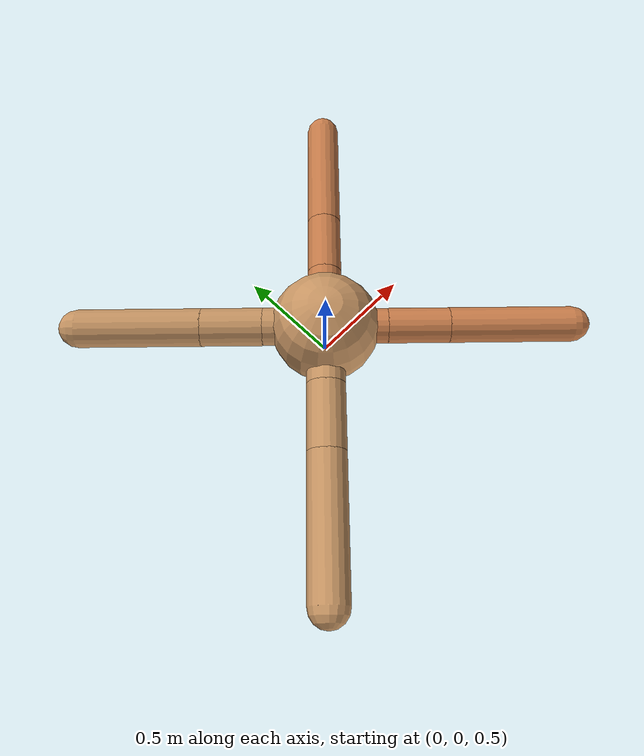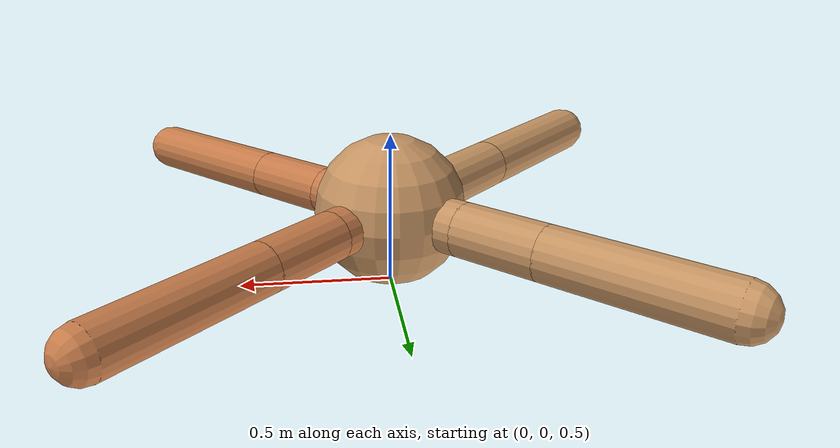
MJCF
<?xml version="1.0" ?>
<mujoco model="ant">

	<compiler angle="degree" coordinate="local" inertiafromgeom="true"/>

	<option integrator="RK4" timestep="0.01"/>

	<custom>

		<numeric data="0.0 0.0 0.55 1.0 0.0 0.0 0.0 0.0 1.0 0.0 -1.0 0.0 -1.0 0.0 1.0" name="init_qpos"/>

	</custom>

	<default>

		<joint armature="1" damping="1" limited="true"/>

		<geom conaffinity="0" condim="3" density="5.0" friction="1.5 0.1 0.1" margin="0.01" rgba="0.8 0.6 0.4 1"/>

	</default>

	<worldbody>

		<body name="torso" pos="0 0 0.75">

			<geom name="torso_geom" pos="0 0 0" size="0.24682460772825113" type="sphere"/>

			<!--joint armature="0" damping="0" limited="false" margin="0.01" name="root" pos="0 0 0" type="free"/-->

			<body name="front_left_leg" pos="0 0 0">

				<geom fromto="0 0 0 0.2 0.2 0" name="aux_1_geom" size="0.07830310734931238" type="capsule" rgba=".8 .5 .3 1"/>

				<body name="aux_1" pos="0.2 0.2 0">

					<joint axis="0 0 1" name="hip_1" pos="0.0 0.0 0.0" range="-40 40" type="hinge"/>

					<geom fromto="0 0 0 0.19841915895980783 0.19841915895980783 0" name="left_leg_geom" size="0.07830310734931238" type="capsule" rgba=".8 .5 .3 1"/>

					<body pos="0.19841915895980783 0.19841915895980783 0" name="front_left_foot">

						<joint axis="-1 1 0" name="ankle_1" pos="0.0 0.0 0.0" range="30 100" type="hinge"/>

						<geom fromto="0 0 0 0.39683831791961566 0.39683831791961566 0" name="left_ankle_geom" size="0.07830310734931238" type="capsule" rgba=".8 .5 .3 1"/>

					</body>

				</body>

			</body>

			<body name="front_right_leg" pos="0 0 0">

				<geom fromto="0 0 0 -0.2 0.2 0" name="aux_2_geom" size="0.08641005153806383" type="capsule"/>

				<body name="aux_2" pos="-0.2 0.2 0">

					<joint axis="0 0 1" name="hip_2" pos="0.0 0.0 0.0" range="-40 40" type="hinge"/>

					<geom fromto="0 0 0 -0.19709464413269528 0.19709464413269528 0" name="right_leg_geom" size="0.08641005153806383" type="capsule"/>

					<body pos="-0.19709464413269528 0.19709464413269528 0" name="front_right_foot">

						<joint axis="1 1 0" name="ankle_2" pos="0.0 0.0 0.0" range="-100 -30" type="hinge"/>

						<geom fromto="0 0 0 -0.39418928826539057 0.39418928826539057 0" name="right_ankle_geom" size="0.08641005153806383" type="capsule"/>

					</body>

				</body>

			</body>

			<body name="left_back_leg" pos="0 0 0">

				<geom fromto="0 0 0 -0.2 -0.2 0" name="aux_3_geom" size="0.08682289330596046" type="capsule"/>

				<body name="aux_3" pos="-0.2 -0.2 0">

					<joint axis="0 0 1" name="hip_3" pos="0.0 0.0 0.0" range="-40 40" type="hinge"/>

					<geom fromto="0 0 0 -0.21435453724951495 -0.21435453724951495 0" name="back_leg_geom" size="0.08682289330596046" type="capsule"/>

					<body pos="-0.21435453724951495 -0.21435453724951495 0" name="left_back_foot">

						<joint axis="-1 1 0" name="ankle_3" pos="0.0 0.0 0.0" range="-100 -30" type="hinge"/>

						<geom fromto="0 0 0 -0.4287090744990299 -0.4287090744990299 0" name="third_ankle_geom" size="0.08682289330596046" type="capsule"/>

					</body>

				</body>

			</body>

			<body name="right_back_leg" pos="0 0 0">

				<geom fromto="0 0 0 0.2 -0.2 0" name="aux_4_geom" size="0.0798479542239898" type="capsule" rgba=".8 .5 .3 1"/>

				<body name="aux_4" pos="0.2 -0.2 0">

					<joint axis="0 0 1" name="hip_4" pos="0.0 0.0 0.0" range="-40 40" type="hinge"/>

					<geom fromto="0 0 0 0.19674094707517378 -0.19674094707517378 0" name="rightback_leg_geom" size="0.0798479542239898" type="capsule" rgba=".8 .5 .3 1"/>

					<body pos="0.19674094707517378 -0.19674094707517378 0" name="right_back_foot">

						<joint axis="1 1 0" name="ankle_4" pos="0.0 0.0 0.0" range="30 100" type="hinge"/>

						<geom fromto="0 0 0 0.39348189415034757 -0.39348189415034757 0" name="fourth_ankle_geom" size="0.0798479542239898" type="capsule" rgba=".8 .5 .3 1"/>

					</body>

				</body>

			</body>

		</body>

	</worldbody>

	<actuator>

		<motor ctrllimited="true" ctrlrange="-1.0 1.0" joint="hip_4" gear="150"/>

		<motor ctrllimited="true" ctrlrange="-1.0 1.0" joint="ankle_4" gear="150"/>

		<motor ctrllimited="true" ctrlrange="-1.0 1.0" joint="hip_1" gear="150"/>

		<motor ctrllimited="true" ctrlrange="-1.0 1.0" joint="ankle_1" gear="150"/>

		<motor ctrllimited="true" ctrlrange="-1.0 1.0" joint="hip_2" gear="150"/>

		<motor ctrllimited="true" ctrlrange="-1.0 1.0" joint="ankle_2" gear="150"/>

		<motor ctrllimited="true" ctrlrange="-1.0 1.0" joint="hip_3" gear="150"/>

		<motor ctrllimited="true" ctrlrange="-1.0 1.0" joint="ankle_3" gear="150"/>

	</actuator>

</mujoco>
